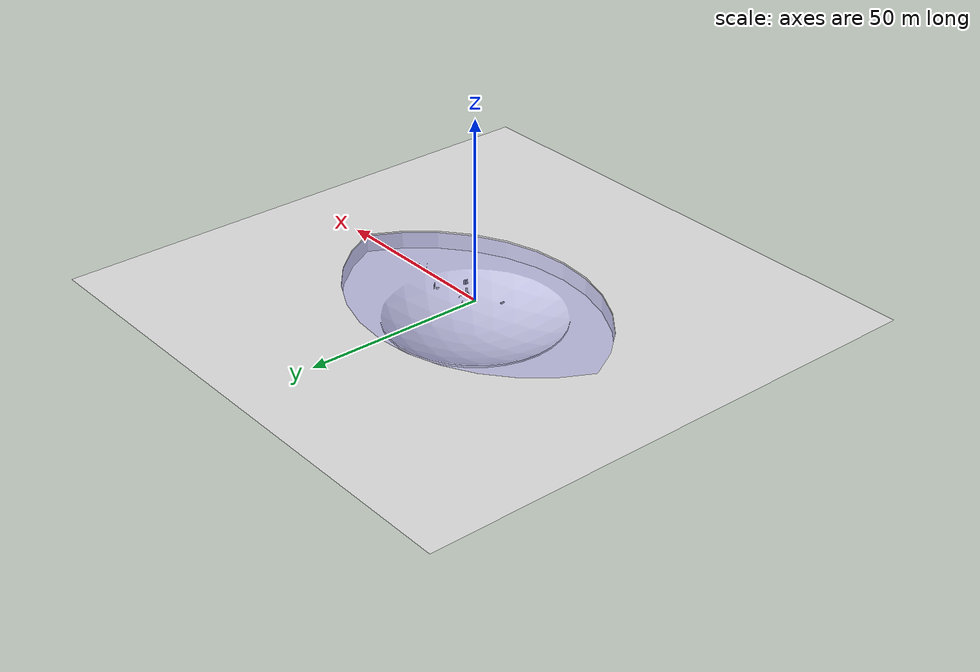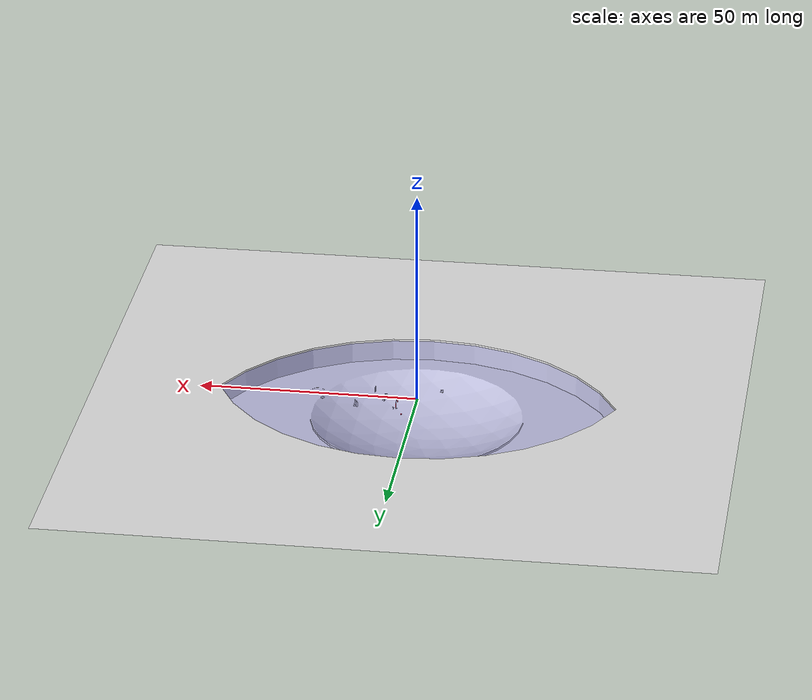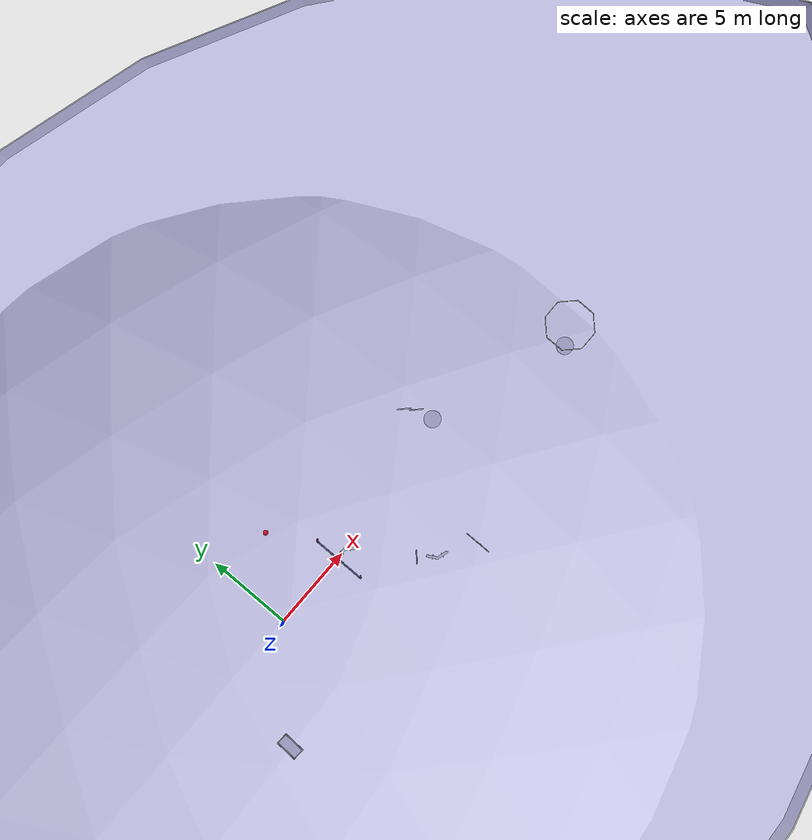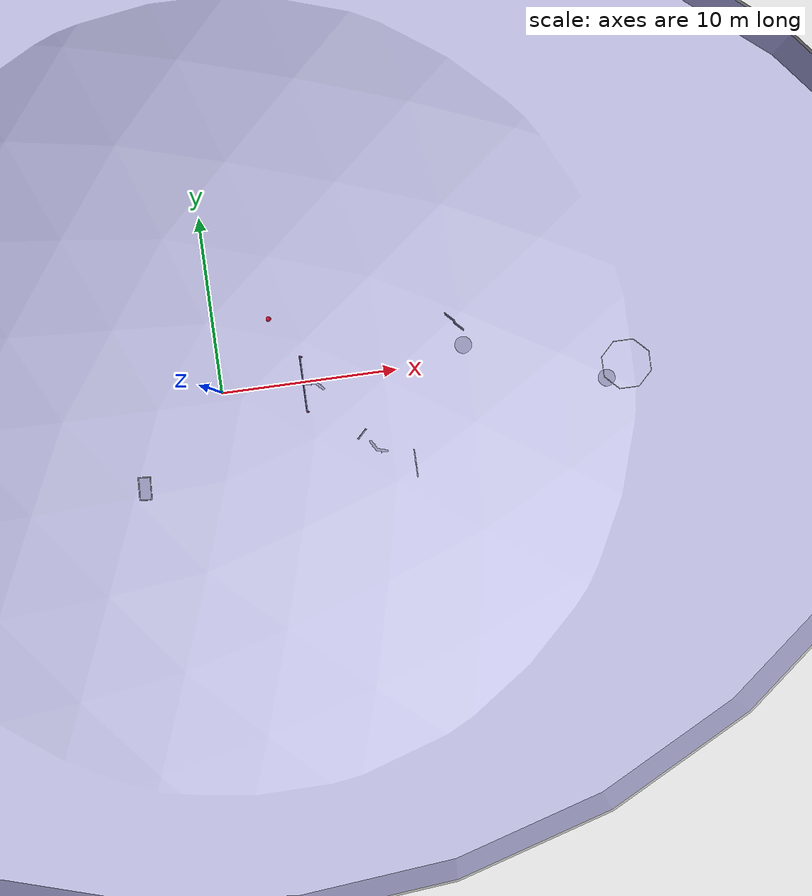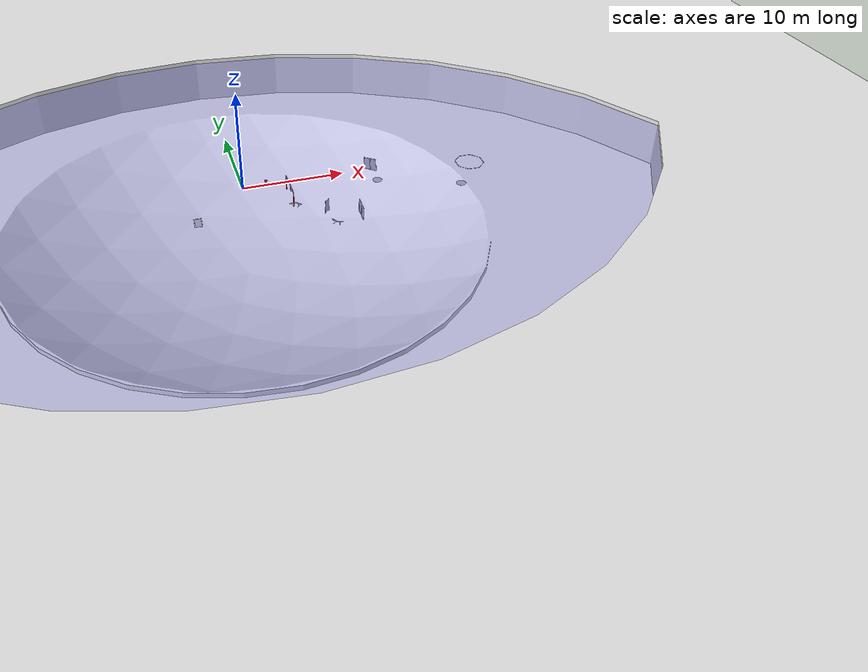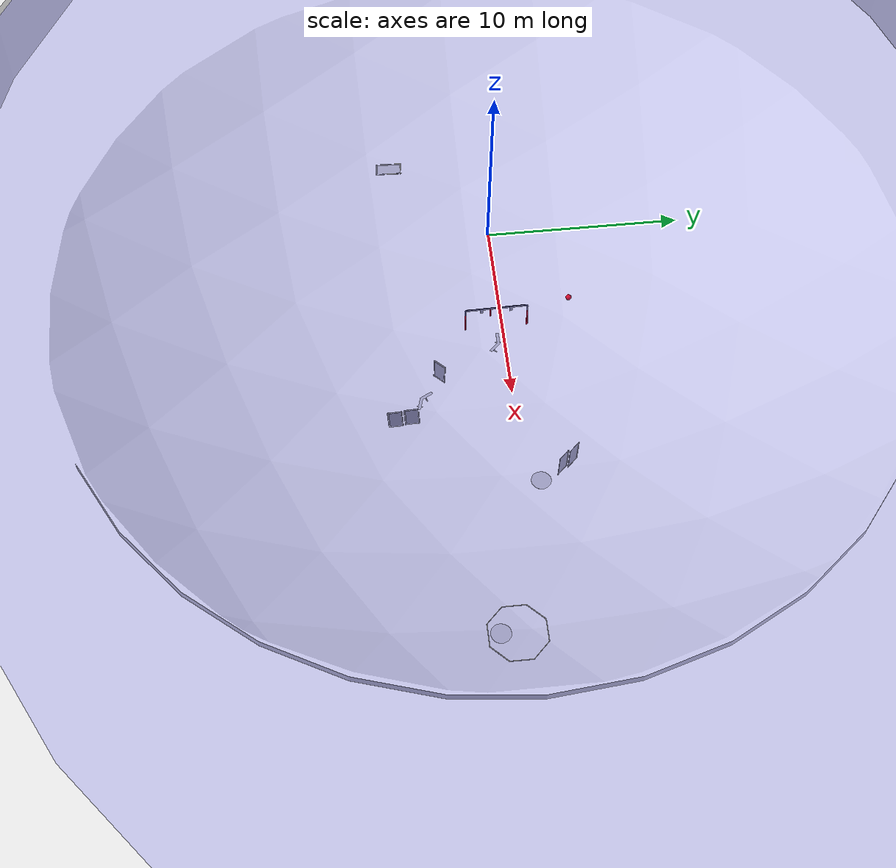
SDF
<sdf version="1.7">
 <world name="default">
  <physics name="default_physics" default="0" type="ode">
   <real_time_update_rate>100</real_time_update_rate>
   <max_step_size>0.01</max_step_size>
   <real_time_factor>1</real_time_factor>
  </physics>
  <spherical_coordinates>
   <surface_model>EARTH_WGS84</surface_model>
   <world_frame_orientation>ENU</world_frame_orientation>
   <latitude_deg>29.6474</latitude_deg>
   <longitude_deg>277.65</longitude_deg>
   <elevation>0.4</elevation>
   <heading_deg>180</heading_deg>
  </spherical_coordinates>
  <magnetic_field>5e-06 2.4e-05 3.9e-05</magnetic_field>
  <light name="illum" type="directional">
   <pose>-4 18 9 0 -0.75 0</pose>
   <diffuse>0.1 0.4 1 1</diffuse>
   <attenuation><constant>1</constant><range>10</range></attenuation>
   <specular>0.1 0.1 0.1 1</specular>
   <direction>0 0 -1</direction>
   <spot><inner_angle>0</inner_angle><outer_angle>0</outer_angle><falloff>0</falloff></spot>
  </light>
  <light name="sky_illum" type="directional">
   <pose>0 0 5 3.14 -0 0</pose>
   <diffuse>1 1 1 1</diffuse>
   <attenuation><constant>1</constant><range>10</range></attenuation>
   <specular>0.1 0.1 0.1 1</specular>
   <direction>0 0 -1</direction>
   <spot><inner_angle>0</inner_angle><outer_angle>0</outer_angle><falloff>0</falloff></spot>
  </light>
  <light name="sun" type="directional">
   <pose>0 0 10 0 -0 0</pose>
   <diffuse>0.8 0.8 0.8 1</diffuse>
   <specular>0.2 0.2 0.2 1</specular>
   <attenuation>
    <range>1000</range>
    <constant>0.9</constant>
    <linear>0.01</linear>
    <quadratic>0.001</quadratic>
   </attenuation>
   <direction>-0.5 0.1 -0.9</direction>
   <spot><inner_angle>0</inner_angle><outer_angle>0</outer_angle><falloff>0</falloff></spot>
  </light>
  <light name="user_point_light_0" type="point">
   <pose>0.109933 -0.142384 1 0 -0 0</pose>
   <diffuse>0.5 0.5 0.5 1</diffuse>
   <specular>0.1 0.1 0.1 1</specular>
   <attenuation>
    <range>100</range>
    <constant>0.5</constant>
    <linear>0.01</linear>
    <quadratic>0.001</quadratic>
   </attenuation>
   <cast_shadows>0</cast_shadows>
   <direction>0 0 -1</direction>
   <spot><inner_angle>0</inner_angle><outer_angle>0</outer_angle><falloff>0</falloff></spot>
  </light>
  <light name="user_point_light_1" type="point">
   <pose>-29.7505 -0.454729 1 0 -0 0</pose>
   <diffuse>0.5 0.5 0.5 1</diffuse>
   <specular>0.1 0.1 0.1 1</specular>
   <attenuation>
    <range>100</range>
    <constant>0.5</constant>
    <linear>0.01</linear>
    <quadratic>0.001</quadratic>
   </attenuation>
   <cast_shadows>0</cast_shadows>
   <direction>0 0 -1</direction>
   <spot><inner_angle>0</inner_angle><outer_angle>0</outer_angle><falloff>0</falloff></spot>
  </light>
  <light name="user_point_light_2" type="point">
   <pose>31.6112 -2.69613 1 0 -0 0</pose>
   <diffuse>0.5 0.5 0.5 1</diffuse>
   <specular>0.1 0.1 0.1 1</specular>
   <attenuation>
    <range>100</range>
    <constant>0.5</constant>
    <linear>0.01</linear>
    <quadratic>0.001</quadratic>
   </attenuation>
   <cast_shadows>0</cast_shadows>
   <direction>0 0 -1</direction>
   <spot><inner_angle>0</inner_angle><outer_angle>0</outer_angle><falloff>0</falloff></spot>
  </light>
  <model name="water">
   <static>1</static>
   <pose>0.194567 0.198111 0 3.14159 9.3e-05 3.14159</pose>
   <link name="link">
    <visual name="visual">
     <transparency>0.8</transparency>
     <cast_shadows>0</cast_shadows>
     <geometry><box><size>92 61 0.02</size></box></geometry>
     <material>
      <ambient>0.2 0.2 0.9 1</ambient>
      <diffuse>0.2 0.2 0.9 1</diffuse>
      <specular>0.1 0.1 0.3 1</specular>
      <emissive>0 0 0 1</emissive>
     </material>
    </visual>
   </link>
  </model>
  <model name="transdec">
   <pose>0 0 0.5 0 -0 0</pose>
   <static>1</static>
   <link name="ground">
    <visual name="visual">
     <geometry><mesh><uri>file://transdec/transdec.dae</uri><scale>0.5 0.5 0.5</scale></mesh></geometry>
     <material>
      <script><uri>file://media/materials/scripts/gazebo.material</uri><name>Gazebo/White</name></script>
     </material>
    </visual>
    <collision name="collision">
     <geometry><mesh><uri>file://transdec/transdec.dae</uri><scale>0.5 0.5 0.5</scale></mesh></geometry>
    </collision>
   </link>
  </model>
  <model name="pathmarkers2018">
   <static>1</static>
   <link name="pathmarkers2018">
    <inertial>
     <mass>0.5</mass>
     <inertia><ixx>0</ixx><ixy>0</ixy><ixz>0</ixz><iyy>0</iyy><iyz>0</iyz><izz>0</izz></inertia>
    </inertial>
    <velocity_decay><linear>1e-05</linear><angular>1e-05</angular></velocity_decay>
    <collision name="pathmarkers2018col">
     <geometry><mesh><uri>file://markers/PathMarkers2018s.dae</uri></mesh></geometry>
    </collision>
    <sensor name="contact" type="contact">
     <contact><collision>pathmarkers2018col</collision><topic>__default_topic__</topic></contact>
     <update_rate>50</update_rate>
     <plugin name="gazebo_ros_bumper_controller" filename="libgazebo_ros_bumper.so">
      <alwaysOn>1</alwaysOn>
      <bumperTopicName>contact_bumper</bumperTopicName>
     </plugin>
    </sensor>
    <visual name="pathmarkers2018vis">
     <geometry><mesh><uri>file://markers/PathMarkers2018s.dae</uri></mesh></geometry>
    </visual>
   </link>
   <pose>4.49659 0.1787 -2.92663 0 -0 0</pose>
  </model>
  <model name="transdec_pinger">
   <static>1</static>
   <pose>14 1 -2 0 -0 0</pose>
   <link name="link">
    <visual name="visual">
     <geometry><cylinder><radius>0.5</radius><length>0.001</length></cylinder></geometry>
    </visual>
   </link>
  </model>
  <model name="transdec_pinger2">
   <static>1</static>
   <pose>22 -2 -2 0 -0 0</pose>
   <link name="link">
    <visual name="visual">
     <geometry><cylinder><radius>0.5</radius><length>0.001</length></cylinder></geometry>
    </visual>
   </link>
  </model>
  <scene>
   <sky><clouds><speed>12</speed></clouds></sky>
   <ambient>0.4 0.4 0.4 1</ambient>
   <background>0.7 0.7 0.7 1</background>
   <shadows>1</shadows>
  </scene>
  <gravity>0 0 -9.8</gravity>
  <atmosphere type="adiabatic"/>
  <model name="posters_2">
   <static>1</static>
   <link name="base_link">
    <inertial>
     <pose>-0.845799 0.235134 0.009916 0 -0 0</pose>
     <mass>8.45052</mass>
     <inertia>
      <ixx>0.978466</ixx>
      <ixy>0.0388385</ixy>
      <ixz>0.0020155</ixz>
      <iyy>0.239042</iyy>
      <iyz>-0.0222223</iyz>
      <izz>1.21612</izz>
     </inertia>
    </inertial>
    <collision name="base_link_collision">
     <geometry><mesh><scale>1 1 1</scale><uri>file://posters/base_link.dae</uri></mesh></geometry>
    </collision>
    <visual name="base_link_visual">
     <geometry><mesh><scale>1 1 1</scale><uri>file://posters/base_link.dae</uri></mesh></geometry>
    </visual>
   </link>
   <pose>14 2 -1.09014 0 0 -0.785</pose>
  </model>
  <model name="posters_3">
   <static>1</static>
   <link name="base_link">
    <inertial>
     <pose>-0.845799 0.235134 0.009916 0 -0 0</pose>
     <mass>8.45052</mass>
     <inertia>
      <ixx>0.978466</ixx>
      <ixy>0.0388385</ixy>
      <ixz>0.0020155</ixz>
      <iyy>0.239042</iyy>
      <iyz>-0.0222223</iyz>
      <izz>1.21612</izz>
     </inertia>
    </inertial>
    <collision name="base_link_collision">
     <geometry><mesh><scale>1 1 1</scale><uri>file://posters/base_link.dae</uri></mesh></geometry>
    </collision>
    <visual name="base_link_visual">
     <geometry><mesh><scale>1 1 1</scale><uri>file://posters/base_link.dae</uri></mesh></geometry>
    </visual>
   </link>
   <pose>14.433 1.43243 -0.989775 0 0 -0.785</pose>
  </model>
  <model name="posters_4">
   <static>1</static>
   <link name="base_link">
    <inertial>
     <pose>-0.845799 0.235134 0.009916 0 -0 0</pose>
     <mass>8.45052</mass>
     <inertia>
      <ixx>0.978466</ixx>
      <ixy>0.0388385</ixy>
      <ixz>0.0020155</ixz>
      <iyy>0.239042</iyy>
      <iyz>-0.0222223</iyz>
      <izz>1.21612</izz>
     </inertia>
    </inertial>
    <collision name="base_link_collision">
     <geometry><mesh><scale>1 1 1</scale><uri>file://posters/base_link.dae</uri></mesh></geometry>
    </collision>
    <visual name="base_link_visual">
     <geometry><mesh><scale>1 1 1</scale><uri>file://posters/base_link.dae</uri></mesh></geometry>
    </visual>
   </link>
   <pose>10.3678 -4.9986 -1.2595 0 -0 1.57</pose>
  </model>
  <model name="octogon">
   <static>1</static>
   <link name="octogon">
    <collision name="octogoncol">
     <geometry><mesh><uri>file://octogon/octogon.dae</uri></mesh></geometry>
    </collision>
    <visual name="octogonvis"><geometry><mesh><uri>file://octogon/octogon.dae</uri></mesh></geometry></visual>
   </link>
   <pose>22.9712 -1.43185 0 0 -0 1.5708</pose>
  </model>
  <model name="pathmarkers2018_0">
   <static>1</static>
   <link name="pathmarkers2018">
    <inertial>
     <mass>0.5</mass>
     <inertia><ixx>0</ixx><ixy>0</ixy><ixz>0</ixz><iyy>0</iyy><iyz>0</iyz><izz>0</izz></inertia>
    </inertial>
    <velocity_decay><linear>1e-05</linear><angular>1e-05</angular></velocity_decay>
    <collision name="pathmarkers2018col">
     <geometry><mesh><uri>file://markers/PathMarkers2018s.dae</uri></mesh></geometry>
    </collision>
    <sensor name="contact" type="contact">
     <contact><collision>pathmarkers2018col</collision><topic>__default_topic__</topic></contact>
     <update_rate>50</update_rate>
     <plugin name="gazebo_ros_bumper_controller" filename="libgazebo_ros_bumper.so">
      <alwaysOn>1</alwaysOn>
      <bumperTopicName>contact_bumper</bumperTopicName>
     </plugin>
    </sensor>
    <visual name="pathmarkers2018vis">
     <geometry><mesh><uri>file://markers/PathMarkers2018s.dae</uri></mesh></geometry>
    </visual>
   </link>
   <pose>8.80989 -4.68693 -2.97363 0.032661 -0.009562 2.8703</pose>
  </model>
  <model name="posters">
   <static>1</static>
   <link name="base_link">
    <inertial>
     <pose>-0.845799 0.235134 0.009916 0 -0 0</pose>
     <mass>8.45052</mass>
     <inertia>
      <ixx>0.978466</ixx>
      <ixy>0.0388385</ixy>
      <ixz>0.0020155</ixz>
      <iyy>0.239042</iyy>
      <iyz>-0.0222223</iyz>
      <izz>1.21612</izz>
     </inertia>
    </inertial>
    <collision name="base_link_collision">
     <geometry><mesh><scale>1 1 1</scale><uri>file://posters/base_link.dae</uri></mesh></geometry>
    </collision>
    <visual name="base_link_visual">
     <geometry><mesh><scale>1 1 1</scale><uri>file://posters/base_link.dae</uri></mesh></geometry>
    </visual>
   </link>
   <pose>10.3637 -4.17768 -1.1472 0 -0 1.57</pose>
  </model>
  <model name="start_gate_2022">
   <static>1</static>
   <link name="base_link">
    <inertial>
     <pose>1.30078 1.35363 2.40887 0 -0 0</pose>
     <mass>13.5315</mass>
     <inertia>
      <ixx>5.04877</ixx>
      <ixy>0.364288</ixy>
      <ixz>-0.576968</ixz>
      <iyy>5.5194</iyy>
      <iyz>-1.05982</iyz>
      <izz>1.53641</izz>
     </inertia>
    </inertial>
    <collision name="base_link_collision">
     <geometry><mesh><uri>file://start_gate_2022/start_gate.dae</uri></mesh></geometry>
    </collision>
    <visual name="base_link_visual">
     <geometry><mesh><uri>file://start_gate_2022/start_gate.dae</uri></mesh></geometry>
    </visual>
   </link>
   <pose>4.55509 -0.018982 -0.205829 0.009062 0.031542 -1.57001</pose>
  </model>
  <model name="Red_buoy">
   <link name="link_0">
    <inertial>
     <mass>0.0131332</mass>
     <inertia>
      <ixx>7.311e-05</ixx>
      <ixy>0</ixy>
      <ixz>0</ixz>
      <iyy>7.311e-05</iyy>
      <iyz>0</iyz>
      <izz>7.311e-05</izz>
     </inertia>
    </inertial>
    <visual name="visual">
     <pose>3 4 -2 0 -0 0</pose>
     <geometry><sphere><radius>0.15</radius></sphere></geometry>
     <material>
      <lighting>1</lighting>
      <script><uri>file://media/materials/scripts/gazebo.material</uri><name>Gazebo/Grey</name></script>
      <shader type="pixel"><normal_map>__default__</normal_map></shader>
      <ambient>1 0 0 1</ambient>
      <diffuse>1 0 0 1</diffuse>
      <specular>1 0 0 1</specular>
      <emissive>1 0 0 1</emissive>
     </material>
    </visual>
    <collision name="collision">
     <geometry><sphere><radius>0.117968</radius></sphere></geometry>
     <surface>
      <friction>
       <ode><mu>1</mu><mu2>1</mu2><fdir1>0 0 0</fdir1><slip1>0</slip1><slip2>0</slip2></ode>
       <torsional>
        <coefficient>1</coefficient>
        <patch_radius>0</patch_radius>
        <surface_radius>0</surface_radius>
        <use_patch_radius>1</use_patch_radius>
        <ode><slip>0</slip></ode>
       </torsional>
      </friction>
      <bounce><restitution_coefficient>0</restitution_coefficient><threshold>1e+06</threshold></bounce>
      <contact>
       <collide_without_contact>0</collide_without_contact>
       <collide_without_contact_bitmask>1</collide_without_contact_bitmask>
       <collide_bitmask>1</collide_bitmask>
       <ode>
        <soft_cfm>0</soft_cfm>
        <soft_erp>0.2</soft_erp>
        <kp>1e+13</kp>
        <kd>1</kd>
        <max_vel>0.01</max_vel>
        <min_depth>0</min_depth>
       </ode>
       <bullet>
        <split_impulse>1</split_impulse>
        <split_impulse_penetration_threshold>-0.01</split_impulse_penetration_threshold>
        <soft_cfm>0</soft_cfm>
        <soft_erp>0.2</soft_erp>
        <kp>1e+13</kp>
        <kd>1</kd>
       </bullet>
      </contact>
     </surface>
    </collision>
   </link>
   <static>1</static>
  </model>
  <model name="buoys_2">
   <model name="Bootlegger_Buoy">
    <static>1</static>
    <link name="base_link">
     <inertial>
      <pose>-0.845799 0.235134 0.009916 0 -0 0</pose>
      <mass>8.45052</mass>
      <inertia>
       <ixx>0.978466</ixx>
       <ixy>0.0388385</ixy>
       <ixz>0.0020155</ixz>
       <iyy>0.239042</iyy>
       <iyz>-0.0222223</iyz>
       <izz>1.21612</izz>
      </inertia>
     </inertial>
     <collision name="base_link_collision">
      <geometry><mesh><scale>1 1 1</scale><uri>file://Bootlegger_Poster/Bootlegger_Buoy.dae</uri></mesh></geometry>
     </collision>
     <visual name="base_link_visual">
      <geometry><mesh><scale>1 1 1</scale><uri>file://Bootlegger_Poster/Bootlegger_Buoy.dae</uri></mesh></geometry>
     </visual>
    </link>
    <pose>2e-06 5e-06 0 0 -0 0</pose>
   </model>
   <static>0</static>
   <pose>-4.24138 -4.56442 0 0 -0 0</pose>
  </model>
  <model name="posters_5">
   <static>1</static>
   <link name="base_link">
    <inertial>
     <pose>-0.845799 0.235134 0.009916 0 -0 0</pose>
     <mass>8.45052</mass>
     <inertia>
      <ixx>0.978466</ixx>
      <ixy>0.0388385</ixy>
      <ixz>0.0020155</ixz>
      <iyy>0.239042</iyy>
      <iyz>-0.0222223</iyz>
      <izz>1.21612</izz>
     </inertia>
    </inertial>
    <collision name="base_link_collision">
     <geometry><mesh><scale>1 1 1</scale><uri>file://Gman_Poster/G-man_Buoy.dae</uri></mesh></geometry>
    </collision>
    <visual name="base_link_visual">
     <geometry><mesh><scale>1 1 1</scale><uri>file://Gman_Poster/G-man_Buoy.dae</uri></mesh></geometry>
    </visual>
   </link>
   <pose>6.92302 -3.94022 -1.0415 1.56526 -0.050617 -2.35626</pose>
  </model>
 </world>
</sdf>
